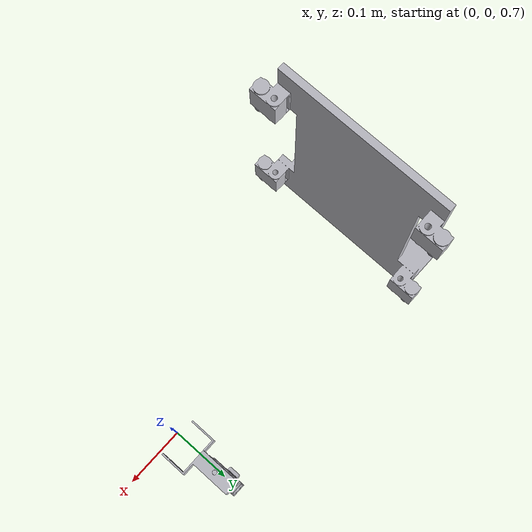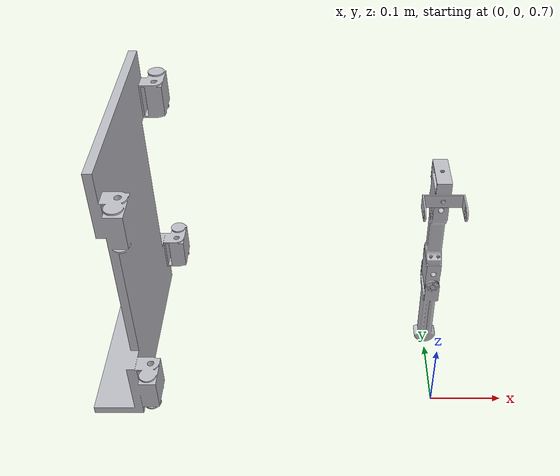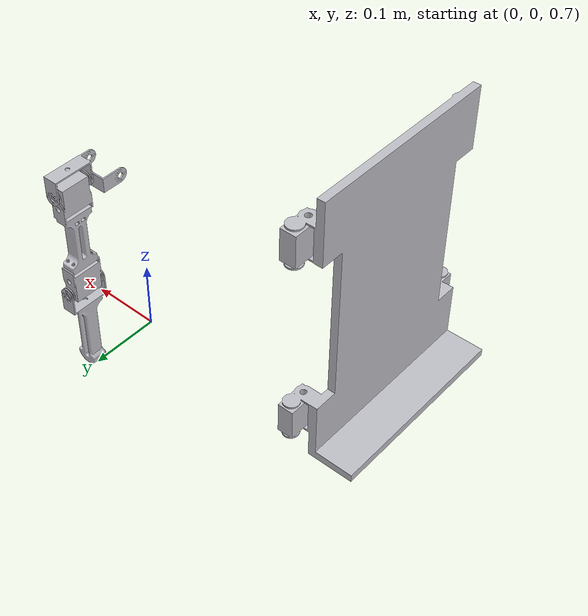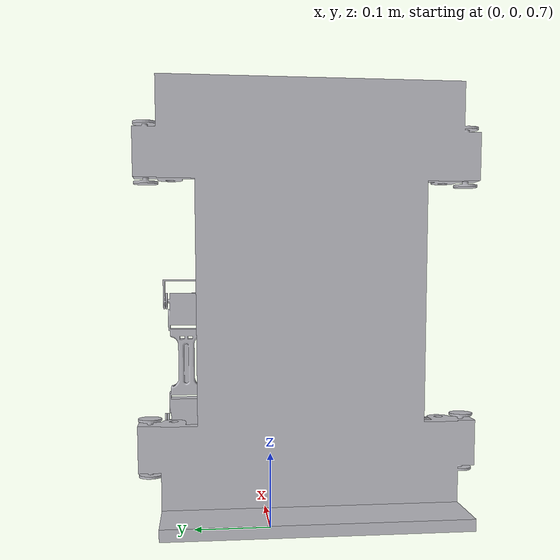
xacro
<?xml version="1.0" ?>
<robot name="FusionComponent" xmlns:xacro="http://www.ros.org/wiki/xacro">

<xacro:include filename="$(find quadruped_description)/urdf/materials.xacro" />
<xacro:include filename="$(find quadruped_description)/urdf/bot_urdf_hii.gazebo" />
<xacro:include filename="$(find quadruped_description)/urdf/ros2_control.xacro" />

<link name="world"></link>
<link name="base_link">
  <inertial>
    <origin xyz="-0.23304185033712116 -0.030638440357548022 6.972053510835912e-05" rpy="0 0 0"/>
    <mass value="3.992059884157941"/>
    <inertia ixx="0.006111" iyy="0.083346" izz="0.084204" ixy="-0.000991" iyz="-3e-06" ixz="-7.3e-05"/>
  </inertial>
  <visual>
    <origin xyz="0 0 0" rpy="0 0 0"/>
    <geometry>
      <mesh filename="file://$(find quadruped_description)/meshes/base_link.stl" scale="0.001 0.001 0.001"/>
    </geometry>
    <material name="silver"/>
  </visual>
  <collision>
    <origin xyz="0 0 0" rpy="0 0 0"/>
    <geometry>
      <mesh filename="file://$(find quadruped_description)/meshes/base_link.stl" scale="0.001 0.001 0.001"/>
    </geometry>
  </collision>
</link>

<link name="link2_v1_1">
  <inertial>
    <origin xyz="-0.07723046995547814 0.024997684987540944 3.1657101628697684e-08" rpy="0 0 0"/>
    <mass value="0.2750466774023333"/>
    <inertia ixx="4.7e-05" iyy="0.000922" izz="0.00095" ixy="-0.0" iyz="-0.0" ixz="-0.0"/>
  </inertial>
  <visual>
    <origin xyz="0.0 -0.082299 -0.001201" rpy="0 0 0"/>
    <geometry>
      <mesh filename="file://$(find quadruped_description)/meshes/link2_v1_1.stl" scale="0.001 0.001 0.001"/>
    </geometry>
    <material name="silver"/>
  </visual>
  <collision>
    <origin xyz="0.0 -0.082299 -0.001201" rpy="0 0 0"/>
    <geometry>
      <mesh filename="file://$(find quadruped_description)/meshes/link2_v1_1.stl" scale="0.001 0.001 0.001"/>
    </geometry>
  </collision>
</link>

<link name="link3_1">
  <inertial>
    <origin xyz="-0.06999157163515277 0.02549464787405195 2.816749020764786e-07" rpy="0 0 0"/>
    <mass value="0.04435870319124352"/>
    <inertia ixx="6e-06" iyy="6.3e-05" izz="6.5e-05" ixy="-0.0" iyz="0.0" ixz="-0.0"/>
  </inertial>
  <visual>
    <origin xyz="0.154 -0.082299 -0.001201" rpy="0 0 0"/>
    <geometry>
      <mesh filename="file://$(find quadruped_description)/meshes/link3_1.stl" scale="0.001 0.001 0.001"/>
    </geometry>
    <material name="silver"/>
  </visual>
  <collision>
    <origin xyz="0.154 -0.082299 -0.001201" rpy="0 0 0"/>
    <geometry>
      <mesh filename="file://$(find quadruped_description)/meshes/link3_1.stl" scale="0.001 0.001 0.001"/>
    </geometry>
  </collision>
</link>

<link name="link1_1">
  <inertial>
    <origin xyz="0.00883677372894309 0.036086841346824314 0.02549993238197565" rpy="0 0 0"/>
    <mass value="0.023765734421080365"/>
    <inertia ixx="2.1e-05" iyy="1e-05" izz="1.9e-05" ixy="-4e-06" iyz="0.0" ixz="-0.0"/>
  </inertial>
  <visual>
    <origin xyz="0.0 -0.053299 0.024299" rpy="0 0 0"/>
    <geometry>
      <mesh filename="file://$(find quadruped_description)/meshes/link1_1.stl" scale="0.001 0.001 0.001"/>
    </geometry>
    <material name="silver"/>
  </visual>
  <collision>
    <origin xyz="0.0 -0.053299 0.024299" rpy="0 0 0"/>
    <geometry>
      <mesh filename="file://$(find quadruped_description)/meshes/link1_1.stl" scale="0.001 0.001 0.001"/>
    </geometry>
  </collision>
</link>

<link name="leg_3_v1_1_fixed_ee"/>

<joint name="virtual_joint" type="fixed">
  <origin xyz="0.0 0.0 1.0" rpy="0.0 -1.57 0.0"/>
  <parent link="world"/>
  <child link="base_link"/>
</joint>

<joint name="base_link1_joint" type="revolute">
  <origin xyz="0.0 0.053299 -0.024299" rpy="0 0 0.0"/>
  <parent link="base_link"/>
  <child link="link1_1"/>
  <axis xyz="0.0 0.0 1.0"/>
  <limit upper="1.570796" lower="-1.570796" effort="100" velocity="100"/>
</joint>

<joint name="link1_link2_joint" type="revolute">
  <origin xyz="0.0 0.029 0.0255" rpy="0 0 0"/>
  <parent link="link1_1"/>
  <child link="link2_v1_1"/>
  <axis xyz="0.0 1.0 0.0"/>
  <limit upper="1.570796" lower="-1.570796" effort="100" velocity="100"/>
</joint>

<joint name="link2_link3_joint" type="revolute">
  <origin xyz="-0.154 0.0 0.0" rpy="0 0 0"/>
  <parent link="link2_v1_1"/>
  <child link="link3_1"/>
  <axis xyz="0.0 1.0 0.0"/>
  <limit upper="1.570796" lower="-1.570796" effort="100" velocity="100"/>
</joint>

<joint name="Fixed_j" type="fixed">
  <origin xyz="-0.125 0.025 0.0" rpy="1.57 0 3.14"/>
  <parent link="link3_1"/>
  <child link="leg_3_v1_1_fixed_ee"/>
  <limit upper="1.570796" lower="-1.570796" effort="100" velocity="100"/>
</joint>

</robot>
